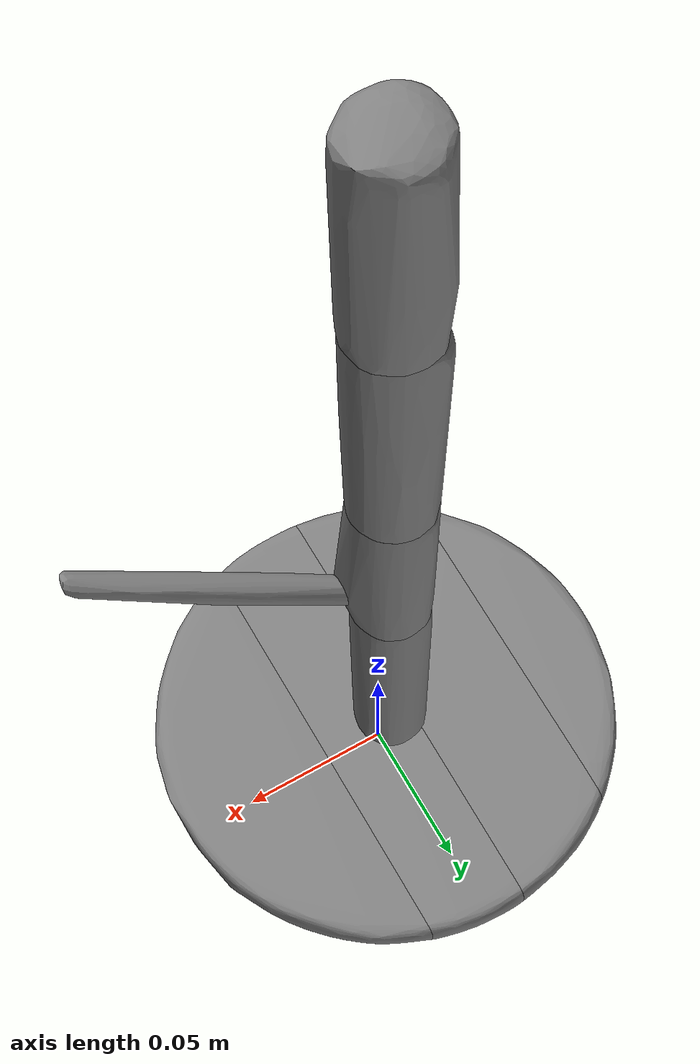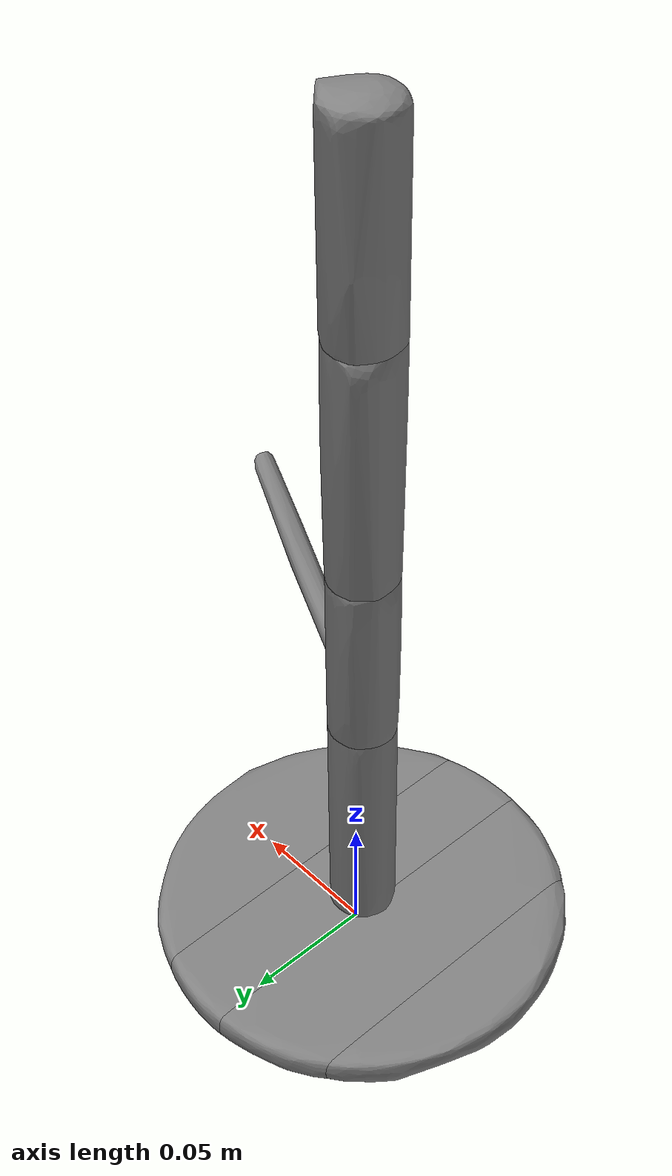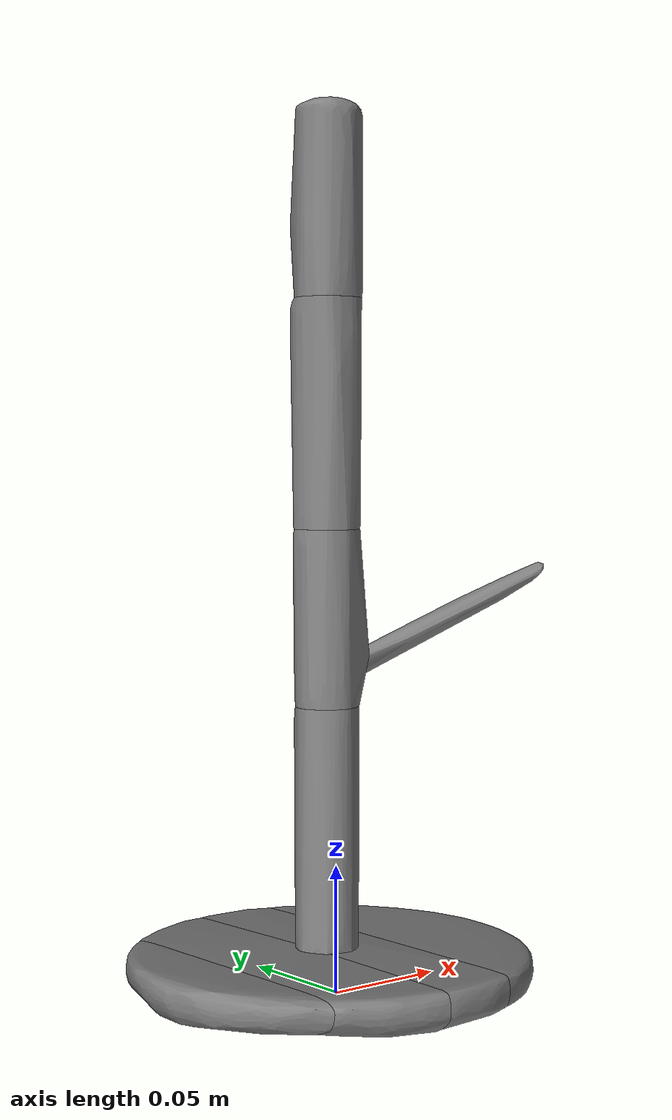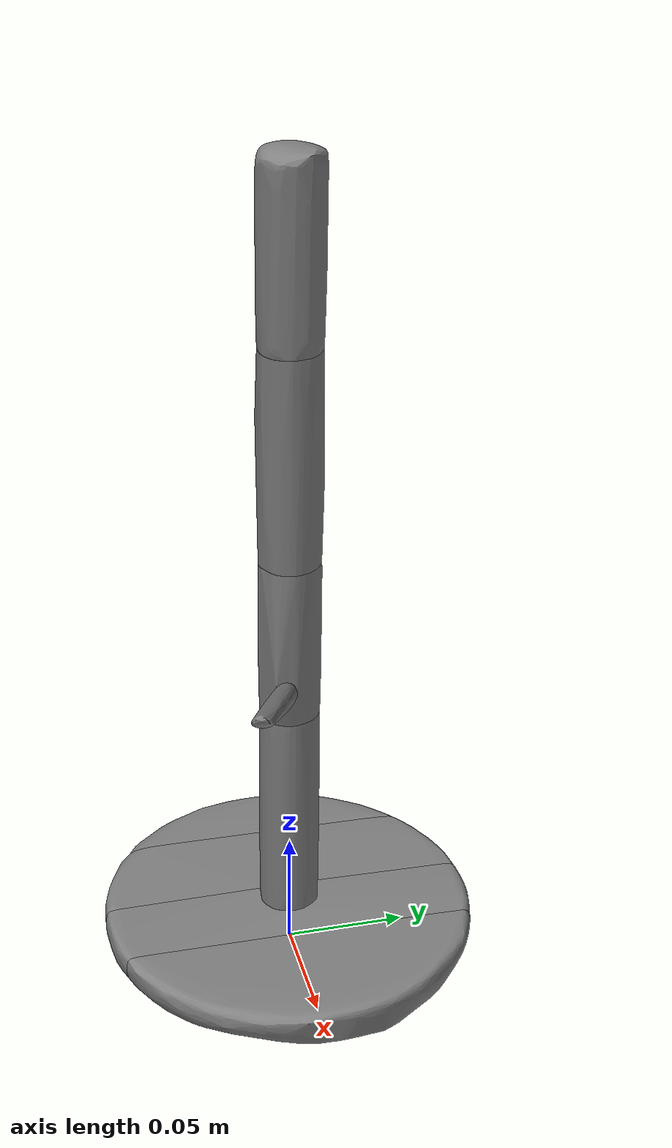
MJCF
<?xml version="1.0" ?>
<mujoco model="040_rack_1">
  <asset>
    <mesh name="040_rack_1_mesh" file="040_rack_1.stl" scale="1. 1. 1."/>
    <mesh name="040_rack_1_part_0" file="decomposed/040_rack_1_decomposed_0.stl" scale="1. 1. 1."/>
    <mesh name="040_rack_1_part_1" file="decomposed/040_rack_1_decomposed_1.stl" scale="1. 1. 1."/>
    <mesh name="040_rack_1_part_2" file="decomposed/040_rack_1_decomposed_2.stl" scale="1. 1. 1."/>
    <mesh name="040_rack_1_part_3" file="decomposed/040_rack_1_decomposed_3.stl" scale="1. 1. 1."/>
    <mesh name="040_rack_1_part_4" file="decomposed/040_rack_1_decomposed_4.stl" scale="1. 1. 1."/>
    <mesh name="040_rack_1_part_5" file="decomposed/040_rack_1_decomposed_5.stl" scale="1. 1. 1."/>
    <mesh name="040_rack_1_part_6" file="decomposed/040_rack_1_decomposed_6.stl" scale="1. 1. 1."/>
    <mesh name="040_rack_1_part_7" file="decomposed/040_rack_1_decomposed_7.stl" scale="1. 1. 1."/>
    <mesh name="040_rack_1_part_8" file="decomposed/040_rack_1_decomposed_8.stl" scale="1. 1. 1."/>
  </asset>
  <worldbody>
    <body name="040_rack_1">
      <geom name="040_rack_1_geom_0" type="mesh" mesh="040_rack_1_part_0"/>
      <geom name="040_rack_1_geom_1" type="mesh" mesh="040_rack_1_part_1"/>
      <geom name="040_rack_1_geom_2" type="mesh" mesh="040_rack_1_part_2"/>
      <geom name="040_rack_1_geom_3" type="mesh" mesh="040_rack_1_part_3"/>
      <geom name="040_rack_1_geom_4" type="mesh" mesh="040_rack_1_part_4"/>
      <geom name="040_rack_1_geom_5" type="mesh" mesh="040_rack_1_part_5"/>
      <geom name="040_rack_1_geom_6" type="mesh" mesh="040_rack_1_part_6"/>
      <geom name="040_rack_1_geom_7" type="mesh" mesh="040_rack_1_part_7"/>
      <geom name="040_rack_1_geom_8" type="mesh" mesh="040_rack_1_part_8"/>
    </body>
  </worldbody>
</mujoco>
